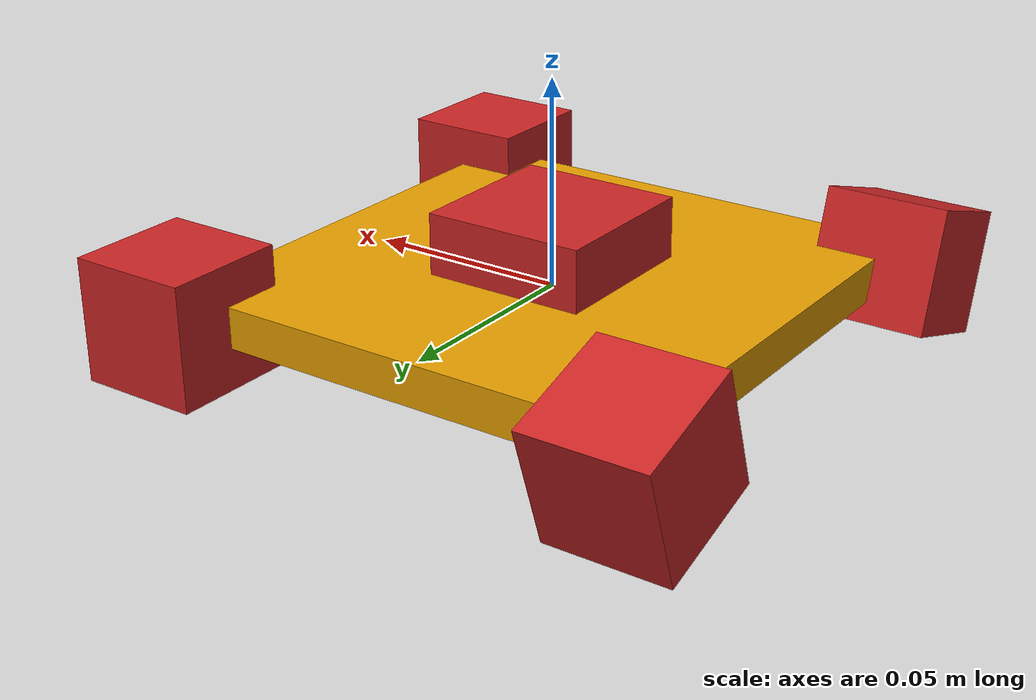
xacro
<?xml version="1.0" ?>
<robot name="4_cameras_v1"
       xmlns:xacro="http://www.ros.org/wiki/xacro">

    <xacro:include filename="$(find v-nav-gazebo-sim)/urdf/camera.urdf.xacro" />
    <xacro:include filename="$(find v-nav-gazebo-sim)/urdf/imu.urdf.xacro" />

    <xacro:property name="x_d" value="0.12"/>
    <xacro:property name="y_d" value="0.12"/>

    <!-- Base link-->

    <link name="base_link">
        <kinematic>1</kinematic>
        <!-- pose and inertial -->
        <pose>0 0 0 0 0 0</pose>
        <inertial>
            <mass value="0.1"/>
            <origin rpy="0 0 0" xyz="0 0 0"/>
            <inertia ixx="0.206208333333" ixy="0" ixz="0" iyy="0.206208333333" iyz="0" izz="0.206208333333"/>
        </inertial>
        <!-- body -->
        <collision>
            <origin rpy="0 0 0" xyz="0 0 0"/>
            <geometry>
                <box size="${x_d} ${y_d} 0.01"/>
            </geometry>
        </collision>
        <visual>
            <origin rpy="0 0 0" xyz="0 0 0"/>
            <geometry>
                <box size="${x_d} ${y_d} 0.01"/>
            </geometry>
        </visual>
    </link>
    <gazebo reference="base_link">
        <kinematic>1</kinematic>
    </gazebo>

    <!-- Cameras  -->
    <xacro:macro name="hlp_camera" params="name xyz rpy mat">

        <xacro:dist_camera name="${name}" />

        <joint name="${name}_joint" type="fixed">
            <axis xyz="0 1 0" />
            <origin xyz="${xyz}" rpy="${rpy}"/>
            <parent link="base_link"/>
            <child link="${name}_link"/>
        </joint>
        <gazebo reference="${name}_link">
            <material>${mat}</material>
        </gazebo>
    </xacro:macro>

    <xacro:hlp_camera name="camera_0" xyz="${x_d/2} ${y_d/2} 0" rpy="0 ${0} ${0}" mat="Gazebo/Yellow" />
    <xacro:hlp_camera name="camera_1" xyz="${x_d/2} ${-y_d/2} 0" rpy="0 ${0} ${0}" mat="Gazebo/Orange"  />
    <xacro:hlp_camera name="camera_2" xyz="${-x_d/2} ${y_d/2} 0" rpy="0 ${pi/10} ${pi-pi/2}" mat="Gazebo/Red"  />
    <xacro:hlp_camera name="camera_3" xyz="${-x_d/2} ${-y_d/2} 0" rpy="0 ${pi/10} ${-pi+pi/2}" mat="Gazebo/Purple"  />

    <!-- IMU -->
    <xacro:imu name="imu" update_rate="100"/>
    <joint name="imu_joint" type="fixed">
        <axis xyz="0 1 0" />
        <origin xyz="0 0 0" rpy="0 0 0"/>
        <parent link="base_link"/>
        <child link="imu_link"/>
    </joint>

    <!-- Pose publisher -->

    <gazebo>
        <plugin name="p3d_base_controller" filename="libgazebo_ros_p3d.so">
            <alwaysOn>true</alwaysOn>
            <updateRate>50.0</updateRate>
            <bodyName>base_link</bodyName>
            <topicName>ground_truth/state</topicName>
            <gaussianNoise>0.01</gaussianNoise>
            <frameName>world</frameName>
            <xyzOffsets>0 0 0</xyzOffsets>
            <rpyOffsets>0 0 0</rpyOffsets>
        </plugin>
    </gazebo>
</robot>

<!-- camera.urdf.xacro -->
<robot xmlns:xacro="http://www.ros.org/wiki/xacro">

    <xacro:macro name="camera_sensor_base" params="name width height update_rate horizontal_fov frame_name k1 k2 k3 p1 p2 cx cy cx_prime">
        <!-- Camera -->
        <link name="${name}_link">
            <collision>
                <origin xyz="0 0 0" rpy="0 0 0"/>
                <geometry>
                    <box size="0.03 0.03 0.03"/>
                </geometry>
            </collision>

            <visual>
                <origin xyz="0 0 0" rpy="0 0 0"/>
                <geometry>
                    <box size="0.03 0.03 0.03"/>
                </geometry>
                <material name="red"/>
            </visual>

            <inertial>
                <mass value="1e-5" />
                <origin xyz="0 0 0" rpy="0 0 0"/>
                <inertia ixx="1e-6" ixy="0" ixz="0" iyy="1e-6" iyz="0" izz="1e-6" />
            </inertial>
        </link>
        <gazebo reference="${name}_link">
            <sensor type="camera" name="${name}">
                <visualize>true</visualize>
                <update_rate>${update_rate}</update_rate>
                <camera name="${name}">
                    <horizontal_fov>${horizontal_fov}</horizontal_fov>
                    <image>
                        <width>${width}</width>
                        <height>${height}</height>
                        <format>R8G8B8</format>
                    </image>
                    <clip>
                        <near>0.01</near>
                        <far>300</far>
                    </clip>
                    <noise>
                        <type>gaussian</type>
                        <mean>0.0</mean>
                        <stddev>0.007</stddev>
                    </noise>
                    <distortion>
                        <k1>${k1}</k1>
                        <k2>${k2}</k2>
                        <k3>${k3}</k3>
                        <p1>${p1}</p1>
                        <p2>${p2}</p2>
                        <center>${(cx - 0.5)/ width} ${(cy - 0.5) / height}</center>
                    </distortion>
                </camera>
                <plugin name="camera_controller" filename="libgazebo_ros_camera.so">
                    <alwaysOn>true</alwaysOn>
                    <cameraName>${name}</cameraName>
                    <imageTopicName>image_raw</imageTopicName>
                    <cameraInfoTopicName>camera_info</cameraInfoTopicName>
                    <frameName>${frame_name}</frameName>
                    <CxPrime>${cx_prime}</CxPrime>
                    <Cx>${cx}</Cx>
                    <Cy>${cy}</Cy>
                    <distortionK1>${k1}</distortionK1>
                    <distortionK2>${k2}</distortionK2>
                    <distortionK3>${k3}</distortionK3>
                    <distortionT1>${p1}</distortionT1>
                    <distortionT2>${p2}</distortionT2>
                </plugin>
            </sensor>
        </gazebo>
    </xacro:macro>
    <xacro:macro name="camera_sensor" params="name width height update_rate horizontal_fov k1:=0 k2:=0 k3:=0 p1:=0 p2:=0">
        <xacro:camera_sensor_base
                name="${name}"
                width="${width}"
                height="${height}"
                update_rate="${update_rate}"
                horizontal_fov="${horizontal_fov}"
                frame_name="${name}_optical"
                k1="${k1}"
                k2="${k2}"
                k3="${k3}"
                p1="${p1}"
                p2="${p2}"
                cx="${(width + 1.0)/2.0}"
                cy="${(height + 1.0)/2.0}"
                cx_prime="${(width + 1.0)/2.0}"
        />

    </xacro:macro>
    <xacro:macro name="simple_camera" params="name">
        <xacro:camera_sensor name="${name}" width="640" height="480" update_rate="30" horizontal_fov="${120.0*pi/180.0}"/>
    </xacro:macro>
    <xacro:macro name="dist_camera" params="name">
        <xacro:camera_sensor_base name="${name}"
                                  frame_name="/${name}_optical"
                                  width="320"
                                  height="240"
                                  update_rate="30"
                                  horizontal_fov="1.8"
                                  k1="-0.273377"
                                  k2="0.0642871"
                                  p1="-0.00086158"
                                  p2="-0.000443529"
                                  k3="-0.00599387"
                                  cx="158.0735"
                                  cy="108.513"
                                  cx_prime="158.0735"
        />
    </xacro:macro>
</robot>

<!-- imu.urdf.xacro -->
<robot xmlns:xacro="http://www.ros.org/wiki/xacro">
    <xacro:macro name="imu" params="name update_rate">
        <link name="${name}_link">
            <collision>
                <origin xyz="0 0 0" rpy="0 0 0"/>
                <geometry>
                    <box size="0.04 0.04 0.04"/>
                </geometry>
            </collision>

            <visual>
                <origin xyz="0 0 0" rpy="0 0 0"/>
                <geometry>
                    <box size="0.04 0.04 0.04"/>
                </geometry>
                <material name="red"/>
            </visual>

            <inertial>
                <mass value="1e-5" />
                <origin xyz="0 0 0" rpy="0 0 0"/>
                <inertia ixx="1e-6" ixy="0" ixz="0" iyy="1e-6" iyz="0" izz="1e-6" />
            </inertial>
        </link>
        <gazebo reference="${name}_link">
            <gravity>true</gravity>
            <sensor name="s_${name}" type="imu">
                <always_on>true</always_on>
                <visualize>true</visualize>
                <plugin filename="libgazebo_ros_imu_sensor.so" name="imu_plugin">
                    <topicName>${name}</topicName>
                    <bodyName>${name}_link</bodyName>
                    <updateRateHZ>${update_rate}</updateRateHZ>
                    <gaussianNoise>0.0</gaussianNoise>
                    <xyzOffset>0 0 0</xyzOffset>
                    <rpyOffset>0 0 0</rpyOffset>
                    <frameName>${name}_link</frameName>
                    <initialOrientationAsReference>false</initialOrientationAsReference>
                </plugin>
                <pose>0 0 0 0 0 0</pose>
            </sensor>
        </gazebo>
    </xacro:macro>
</robot>
